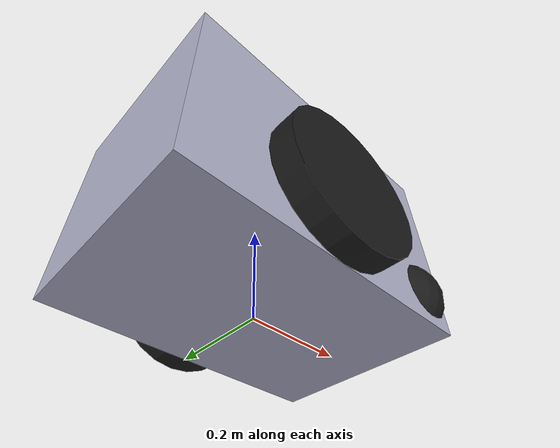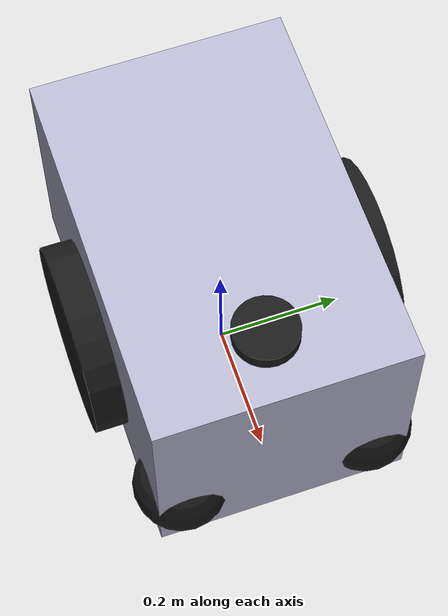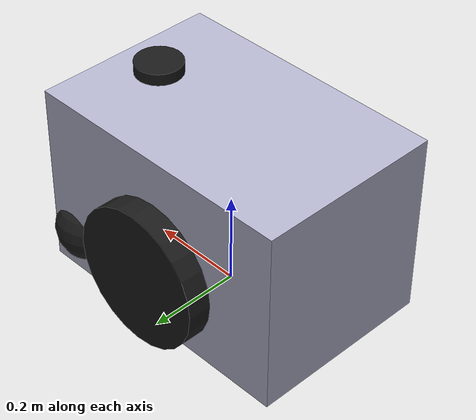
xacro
<?xml version="1.0"?>
<robot xmlns:xacro="http://www.ros.org/wiki/xacro" name="wheelchair">

  <!-- Materials -->
  <material name="metallic">
    <color rgba="0.7 0.7 0.8 1.0"/>
  </material>
  <material name="black">
    <color rgba="0.1 0.1 0.1 1.0"/>
  </material>

  <!-- Base Link (Main Body) -->
  <link name="base_link">
    <visual>
      <geometry>
        <!-- Main chassis approximation: 0.6m long, 0.4m wide, 0.4m high -->
        <box size="0.6 0.4 0.4"/>
      </geometry>
      <material name="metallic"/>
      <origin xyz="0 0 0.2" rpy="0 0 0"/>
    </visual>
  </link>

  <!-- Left Main Wheel -->
  <link name="left_wheel_link">
    <visual>
      <geometry>
        <cylinder length="0.05" radius="0.15"/>
      </geometry>
      <material name="black"/>
      <origin xyz="0 0 0" rpy="1.5708 0 0"/> <!-- Rotate for processing -->
    </visual>
  </link>

  <joint name="left_wheel_joint" type="fixed">
    <parent link="base_link"/>
    <child link="left_wheel_link"/>
    <!-- Positioned slightly back and to the left -->
    <origin xyz="0 0.225 0.15" rpy="0 0 0"/>
  </joint>

  <!-- Right Main Wheel -->
  <link name="right_wheel_link">
    <visual>
      <geometry>
        <cylinder length="0.05" radius="0.15"/>
      </geometry>
      <material name="black"/>
      <origin xyz="0 0 0" rpy="1.5708 0 0"/>
    </visual>
  </link>

  <joint name="right_wheel_joint" type="fixed">
    <parent link="base_link"/>
    <child link="right_wheel_link"/>
    <!-- Positioned slightly back and to the right -->
    <origin xyz="0 -0.225 0.15" rpy="0 0 0"/>
  </joint>

  <!-- Front Caster Wheels (Visual) -->
    <!-- Left Caster -->
  <link name="left_caster_link">
    <visual>
        <geometry>
            <sphere radius="0.075"/>
        </geometry>
        <material name="black"/>
    </visual>
  </link>
  <joint name="left_caster_joint" type="fixed">
      <parent link="base_link"/>
      <child link="left_caster_link"/>
      <origin xyz="0.25 0.15 0.075" rpy="0 0 0"/>
  </joint>

    <!-- Right Caster -->
  <link name="right_caster_link">
    <visual>
        <geometry>
            <sphere radius="0.075"/>
        </geometry>
        <material name="black"/>
    </visual>
  </link>
  <joint name="right_caster_joint" type="fixed">
      <parent link="base_link"/>
      <child link="right_caster_link"/>
      <origin xyz="0.25 -0.15 0.075" rpy="0 0 0"/>
  </joint>

  <!-- LiDAR Link -->
  <!-- This replaces the static transform we had in the launch file -->
  <!-- Assuming LiDAR is mounted 20cm forward and 10cm above base origin (0.3m from ground) -->
  <link name="base_laser">
    <visual>
      <geometry>
        <cylinder length="0.05" radius="0.05"/>
      </geometry>
      <material name="black"/>
    </visual>
  </link>

  <joint name="laser_joint" type="fixed">
    <parent link="base_link"/>
    <child link="base_laser"/>
    <origin xyz="0.2 0 0.4" rpy="0 0 0"/>
  </joint>

</robot>
